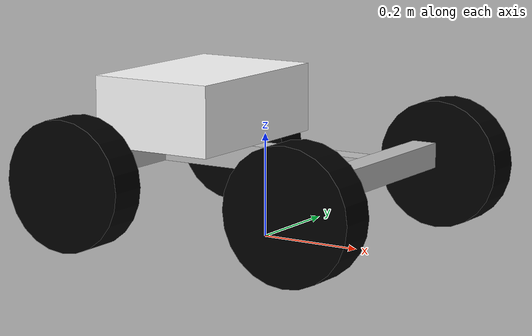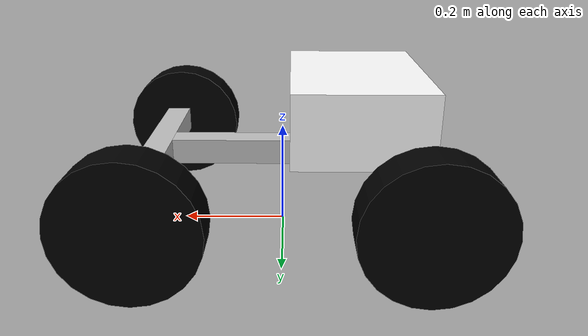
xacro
<?xml version="1.0"?>
<robot xmlns:xacro="http://www.ros.org/wiki/xacro"  name="robot">

    <xacro:arg name="use_ros2_control" default="true"/>
    <xacro:arg name="sim_mode" default="false"/>

    <xacro:include filename="robot2_core_v1.xacro" />

    <!--xacro:include filename="lidar.xacro" /-->
    <!--xacro:include filename="camera_v1.xacro" /-->

    <!-- selecting what to run Gazebo or real robot-->

    <xacro:if value="$(arg use_ros2_control)">
        <xacro:include filename="ros2_control2_v1.xacro" />
    </xacro:if>
    <!--Basic Gazebo control without ros2_control -->
    <xacro:unless value="$(arg use_ros2_control)">
        <xacro:include filename="gazebo_control.xacro" />
    </xacro:unless>

</robot>

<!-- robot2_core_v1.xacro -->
<robot xmlns:xacro="http://www.ros.org/wiki/xacro">

    <material name="White">
    <color rgba="1.0 1.0 1.0 1.0"/> <!-- White -->
    </material>

    <material name="Black">
    <color rgba="0.0 0.0 0.0 1.0"/> <!-- Black -->
    </material>

    <material name="Blue">
    <color rgba="0.0 0.0 1.0 1.0"/> <!-- Blue -->
    </material>

    <material name="Silver">
    <color rgba="0.75 0.75 0.75 1.0"/> <!-- RGB for silver, fully opaque -->
    </material>

    <xacro:include filename="inertial_macros.xacro"/>
<!-- Properties-->
    <!-- Chassis-->
    <xacro:property name="chassis_width" value="0.048"/>    <!-- goBilda U channel width-->
    <xacro:property name="chassis_a_length" value="0.432"/> <!-- goBilda U channel 17 holes-->
    <xacro:property name="chassis_b_length" value="0.384"/> <!-- goBilda U channel 15 holes-->
    <xacro:property name="chassis_mass" value="0.5"/>
    <!-- Wheels-->
    <xacro:property name="wheel_radius" value="0.125"/>
    <xacro:property name="wheel_thickness" value="0.075"/>
    <xacro:property name="wheel_offset_x" value="0.0"/>
    <xacro:property name="wheel_offset_y" value="0.090"/>
    <xacro:property name="wheel_offset_z" value="0.005"/>
    <xacro:property name="wheel_mass" value="0.01"/>
    <xacro:property name="wheel_friction" value="0.25"/>

    <xacro:property name="wheel_seperation" value="${chassis_b_length+2*wheel_offset_y}"/>

    <!-- BOX-->
    <xacro:property name="box_length" value="0.25"/>       <!-- Box external dim-->
    <xacro:property name="box_width" value="0.36"/>
    <xacro:property name="box_hieght" value="0.135"/>
    <xacro:property name="box_mass" value="0.5"/>

<!-- The Base link will be the center of rotation of the Robot-->

   <link name="base_link">
   </link>

<!-- ychassis joint will be placed on bottom rear-->
<!-- Chassis Shift it up by Wheel hieght-->
   <joint name="ychassis_joint" type="fixed">
    <parent link="base_link"/>
    <child link="ychassis"/>
    <origin xyz="-${chassis_a_length/2} 0 ${wheel_radius+wheel_offset_z}"/> <!-- Center of movement in the middle of robot-->
   </joint>

   <link name="ychassis">
    <visual>
        <origin xyz="${chassis_a_length/2} 0 ${chassis_width/2}" rpy="0 0 0"/> <!-- Shift origin to bottom rear-->
        <geometry>
            <box size="${chassis_a_length} ${chassis_width} ${chassis_width}"/>
        </geometry>
        <material name="Silver"/>
    </visual>
    <collision>
        <origin xyz="${chassis_a_length/2} 0 ${chassis_width/2}" rpy="0 0 0"/> <!-- Shift origin to bottom rear-->
        <geometry>
            <box size="${chassis_a_length} ${chassis_width} ${chassis_width}"/>
        </geometry>
    </collision>
    <xacro:inertial_box mass="${chassis_mass}" x="${chassis_a_length}" y="${chassis_width}" z="${chassis_width}">
            <origin xyz="${chassis_a_length/2} 0 ${chassis_width/2}" rpy="0 0 0"/>
    </xacro:inertial_box>
   </link>

   <gazebo reference="ychassis">
        <material>Gazebo/White</material>
   </gazebo>

<!-- ychassis joint will be placed on middle of channel-->
<!-- Chassis Shift it up by Wheel hieght-->
   <joint name="x_rear_chassis_joint" type="fixed">
    <parent link="ychassis"/>
    <child link="x_rear_chassis"/>
    <origin xyz="-${chassis_width} 0 ${chassis_width/2}"/>
   </joint>

   <link name="x_rear_chassis">
    <visual>
        <origin xyz="${chassis_width/2} 0 0" rpy="0 0 0"/>
        <geometry>
            <box size="${chassis_width} ${chassis_b_length} ${chassis_width}"/>
        </geometry>
        <material name="Silver"/>
    </visual>
     <collision>
        <origin xyz="${chassis_width/2} 0 0" rpy="0 0 0"/>
        <geometry>
            <box size="${chassis_width} ${chassis_b_length} ${chassis_width}"/>
        </geometry>
    </collision>
    <xacro:inertial_box mass="${chassis_mass}" x="${chassis_width}" y="${chassis_b_length}" z="${chassis_width}">
            <origin xyz="${chassis_width/2} 0 0" rpy="0 0 0"/>
    </xacro:inertial_box>
   </link>
   <gazebo reference="x_rear_chassis">
        <material>Gazebo/White</material>
   </gazebo>

<!-- ychassis joint will be placed on middle of channel to support movment-->
<!-- Chassis Shift it up by Wheel hieght-->
   <joint name="x_front_chassis_joint" type="fixed"> <!--revolute-->
    <parent link="ychassis"/>
    <child link="x_front_chassis"/>
    <origin xyz="${chassis_a_length} 0 ${chassis_width/2}"/>
    <limit lower="-0.7854" upper="0.7854" effort="10" velocity="3"/>  <!-- 1/4 of Cricle limits-->
    <axis xyz="1 0 0"/>
   </joint>

   <link name="x_front_chassis">
    <visual>
        <origin xyz="${chassis_width/2} 0 0" rpy="0 0 0"/>
        <geometry>
            <box size="${chassis_width} ${chassis_b_length} ${chassis_width}"/>
        </geometry>
        <material name="Silver"/>
    </visual>
    <collision>
        <origin xyz="${chassis_width/2} 0 0" rpy="0 0 0"/>
        <geometry>
            <box size="${chassis_width} ${chassis_b_length} ${chassis_width}"/>
        </geometry>
    </collision>
    <xacro:inertial_box mass="${chassis_mass}" x="${chassis_width}" y="${chassis_b_length}" z="${chassis_width}">
            <origin xyz="${chassis_width/2} 0 0" rpy="0 0 0"/>
    </xacro:inertial_box>
   </link>
   <gazebo reference="x_front_chassis">
        <material>Gazebo/White</material>
   </gazebo>

<!-- box joint will be placed on bottom rear-->
<!-- box Shift it up by chassis hieght-->
   <joint name="box_joint" type="fixed">
    <parent link="ychassis"/>
    <child link="box_chassis"/>
    <origin xyz="-${chassis_width} 0 ${chassis_width}"/>
   </joint>

   <link name="box_chassis">
    <visual>
        <origin xyz="${box_length/2} 0 ${box_hieght/2}" rpy="0 0 0"/>
        <geometry>
            <box size="${box_length} ${box_width} ${box_hieght}"/>
        </geometry>
        <material name="White"/>
    </visual>
    <collision>
        <origin xyz="${box_length/2} 0 ${box_hieght/2}" rpy="0 0 0"/>
        <geometry>
            <box size="${box_length} ${box_width} ${box_hieght}"/>
        </geometry>
    </collision>
    <xacro:inertial_box mass="${box_mass}" x="${box_length}" y="${box_width}" z="${box_hieght}">
        <origin xyz="${box_length/2} 0 ${box_hieght/2}" rpy="0 0 0"/>
    </xacro:inertial_box>
   </link>
   <gazebo reference="box_chassis">
        <material>Gazebo/White</material>
   </gazebo>

<!-- LEFT REAR WHEEL -->

    <joint name="left_rear_wheel_joint" type="continuous"> <!-- change to continuous-->
        <parent link="x_rear_chassis"/>
        <child link="left_rear_wheel"/>
        <origin xyz="${chassis_width/2+wheel_offset_x} ${chassis_b_length/2+wheel_offset_y} -${chassis_width/2+wheel_offset_z}" rpy="-${pi/2} 0 0"/>
        <axis xyz="0 0 1"/> <!-- rotation Axis-->
    </joint>

    <link name="left_rear_wheel">
        <visual>
            <geometry>
                <cylinder radius="${wheel_radius}" length="${wheel_thickness}"/>
            </geometry>
            <material name="Black"/>
        </visual>
        <collision>
            <geometry>
                <cylinder radius="${wheel_radius}" length="${wheel_thickness}"/>
            </geometry>
        </collision>
        <xacro:inertial_cylinder mass="${wheel_mass}" length="${wheel_thickness}" radius="${wheel_radius}">
            <origin xyz="0 0 0" rpy="0 0 0"/>
        </xacro:inertial_cylinder>
    </link>
    <gazebo reference="left_rear_wheel">
        <material>Gazebo/Black</material>
        <mu1 value="${wheel_friction}"/>
        <mu2 value="${wheel_friction}"/>
    </gazebo>

<!-- RIGHT REAR WHEEL -->

    <joint name="right_rear_wheel_joint" type="continuous"> <!-- change to continuous-->
        <parent link="x_rear_chassis"/>
        <child link="right_rear_wheel"/>
        <origin xyz="${chassis_width/2+wheel_offset_x} -${chassis_b_length/2+wheel_offset_y} -${chassis_width/2+wheel_offset_z}" rpy="${pi/2} 0 0"/>
        <axis xyz="0 0 -1"/> <!-- rotation Axis-->
    </joint>

    <link name="right_rear_wheel">
        <visual>
            <geometry>
                <cylinder radius="${wheel_radius}" length="${wheel_thickness}"/>
            </geometry>
            <material name="Black"/>
        </visual>
        <collision>
            <geometry>
                <cylinder radius="${wheel_radius}" length="${wheel_thickness}"/>
            </geometry>
        </collision>
        <xacro:inertial_cylinder mass="${wheel_mass}" length="${wheel_thickness}" radius="${wheel_radius}">
            <origin xyz="0 0 0" rpy="0 0 0"/>
        </xacro:inertial_cylinder>
    </link>
    <gazebo reference="right_rear_wheel">
        <material>Gazebo/Black</material>
        <mu1 value="${wheel_friction}"/>
        <mu2 value="${wheel_friction}"/>
    </gazebo>

<!-- LEFT FRONT WHEEL -->

    <joint name="left_front_wheel_joint" type="fixed"> <!-- change to continuous-->
        <parent link="x_front_chassis"/>
        <child link="left_front_wheel"/>
        <origin xyz="${chassis_width/2+wheel_offset_x} ${chassis_b_length/2+wheel_offset_y} -${chassis_width/2+wheel_offset_z}" rpy="-${pi/2} 0 0"/>
        <axis xyz="0 0 1"/> <!-- rotation Axis-->
    </joint>

    <link name="left_front_wheel">
        <visual>
            <geometry>
                <cylinder radius="${wheel_radius}" length="${wheel_thickness}"/>
            </geometry>
            <material name="Black"/>
        </visual>
        <collision>
            <geometry>
                <cylinder radius="${wheel_radius}" length="${wheel_thickness}"/>
            </geometry>
        </collision>
        <xacro:inertial_cylinder mass="${wheel_mass}" length="${wheel_thickness}" radius="${wheel_radius}">
            <origin xyz="0 0 0" rpy="0 0 0"/>
        </xacro:inertial_cylinder>
    </link>
    <gazebo reference="left_front_wheel">
        <material>Gazebo/Black</material>
        <mu1 value="${wheel_friction}"/>
        <mu2 value="${wheel_friction}"/>
    </gazebo>

<!-- RIGHT FRONT WHEEL -->

    <joint name="right_front_wheel_joint" type="fixed"> <!-- change to continuous-->
        <parent link="x_front_chassis"/>
        <child link="right_front_wheel"/>
        <origin xyz="${chassis_width/2+wheel_offset_x} -${chassis_b_length/2+wheel_offset_y} -${chassis_width/2+wheel_offset_z}" rpy="${pi/2} 0 0"/>
        <axis xyz="0 0 -1"/> <!-- rotation Axis-->
    </joint>

    <link name="right_front_wheel">
        <visual>
            <geometry>
                <cylinder radius="${wheel_radius}" length="${wheel_thickness}"/>
            </geometry>
            <material name="Black"/>
        </visual>
        <collision>
            <geometry>
                <cylinder radius="${wheel_radius}" length="${wheel_thickness}"/>
            </geometry>
        </collision>
        <xacro:inertial_cylinder mass="${wheel_mass}" length="${wheel_thickness}" radius="${wheel_radius}">
            <origin xyz="0 0 0" rpy="0 0 0"/>
        </xacro:inertial_cylinder>
    </link>
    <gazebo reference="right_front_wheel">
        <material>Gazebo/Black</material>
        <mu1 value="${wheel_friction}"/>
        <mu2 value="${wheel_friction}"/>
    </gazebo>

     <!-- WEED WHACKER WHEEL LINK place holder - need to change later.. -->
</robot>
